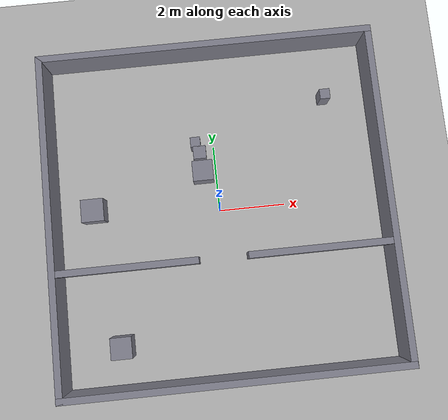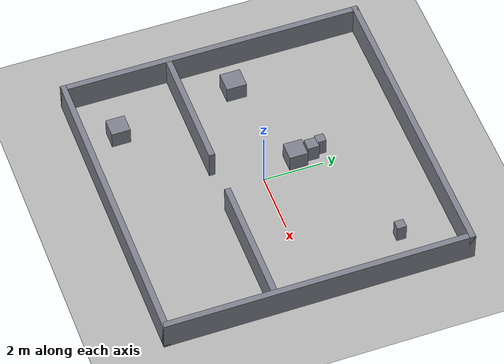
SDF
<?xml version="1.0"?>
<sdf version="1.10">
  <world name="scenario_1">
    <physics name="fast" type="ignored">
      <max_step_size>0.005</max_step_size>
      <real_time_factor>1.0</real_time_factor>
      <real_time_update_rate>200</real_time_update_rate>
    </physics>
    <plugin filename="gz-sim-physics-system" name="gz::sim::systems::Physics"/>
    <plugin filename="gz-sim-user-commands-system" name="gz::sim::systems::UserCommands"/>
    <plugin filename="gz-sim-scene-broadcaster-system" name="gz::sim::systems::SceneBroadcaster"/>
    <plugin filename="gz-sim-sensors-system" name="gz::sim::systems::Sensors">
      <render_engine>ogre2</render_engine>
    </plugin>
    <light type="directional" name="sun">
      <cast_shadows>false</cast_shadows>
      <pose>0 0 10 0 0 0</pose>
      <diffuse>0.9 0.9 0.9 1</diffuse>
      <direction>-0.5 0.2 -0.9</direction>
    </light>
    <model name="ground_plane">
      <static>true</static>
      <link name="link">
        <collision name="c"><geometry><plane><normal>0 0 1</normal><size>20 20</size></plane></geometry></collision>
        <visual name="v"><geometry><plane><normal>0 0 1</normal><size>20 20</size></plane></geometry>
          <material><ambient>0.7 0.7 0.7 1</ambient><diffuse>0.7 0.7 0.7 1</diffuse></material></visual>
      </link>
    </model>
    <model name="box_0">
      <static>true</static>
      <pose>0.0 5.0 0.5 0 0 0</pose>
      <link name="link">
        <collision name="c"><geometry><box><size>10.2 0.2 1.0</size></box></geometry></collision>
        <visual name="v"><geometry><box><size>10.2 0.2 1.0</size></box></geometry>
          <material><ambient>0.5 0.5 0.55 1</ambient><diffuse>0.5 0.5 0.55 1</diffuse></material></visual>
      </link>
    </model>
    <model name="box_1">
      <static>true</static>
      <pose>0.0 -5.0 0.5 0 0 0</pose>
      <link name="link">
        <collision name="c"><geometry><box><size>10.2 0.2 1.0</size></box></geometry></collision>
        <visual name="v"><geometry><box><size>10.2 0.2 1.0</size></box></geometry>
          <material><ambient>0.5 0.5 0.55 1</ambient><diffuse>0.5 0.5 0.55 1</diffuse></material></visual>
      </link>
    </model>
    <model name="box_2">
      <static>true</static>
      <pose>5.0 0.0 0.5 0 0 0</pose>
      <link name="link">
        <collision name="c"><geometry><box><size>0.2 10.2 1.0</size></box></geometry></collision>
        <visual name="v"><geometry><box><size>0.2 10.2 1.0</size></box></geometry>
          <material><ambient>0.5 0.5 0.55 1</ambient><diffuse>0.5 0.5 0.55 1</diffuse></material></visual>
      </link>
    </model>
    <model name="box_3">
      <static>true</static>
      <pose>-5.0 0.0 0.5 0 0 0</pose>
      <link name="link">
        <collision name="c"><geometry><box><size>0.2 10.2 1.0</size></box></geometry></collision>
        <visual name="v"><geometry><box><size>0.2 10.2 1.0</size></box></geometry>
          <material><ambient>0.5 0.5 0.55 1</ambient><diffuse>0.5 0.5 0.55 1</diffuse></material></visual>
      </link>
    </model>
    <model name="box_4">
      <static>true</static>
      <pose>-2.8257945986618846 -1.47 0.5 0 0 0</pose>
      <link name="link">
        <collision name="c"><geometry><box><size>4.148410802676231 0.2 1.0</size></box></geometry></collision>
        <visual name="v"><geometry><box><size>4.148410802676231 0.2 1.0</size></box></geometry>
          <material><ambient>0.5 0.5 0.55 1</ambient><diffuse>0.5 0.5 0.55 1</diffuse></material></visual>
      </link>
    </model>
    <model name="box_5">
      <static>true</static>
      <pose>2.794205401338116 -1.47 0.5 0 0 0</pose>
      <link name="link">
        <collision name="c"><geometry><box><size>4.211589197323769 0.2 1.0</size></box></geometry></collision>
        <visual name="v"><geometry><box><size>4.211589197323769 0.2 1.0</size></box></geometry>
          <material><ambient>0.5 0.5 0.55 1</ambient><diffuse>0.5 0.5 0.55 1</diffuse></material></visual>
      </link>
    </model>
    <model name="box_6">
      <static>true</static>
      <pose>-0.4 1.21 0.3 0 0 0</pose>
      <link name="link">
        <collision name="c"><geometry><box><size>0.62 0.62 0.6</size></box></geometry></collision>
        <visual name="v"><geometry><box><size>0.62 0.62 0.6</size></box></geometry>
          <material><ambient>0.5 0.5 0.55 1</ambient><diffuse>0.5 0.5 0.55 1</diffuse></material></visual>
      </link>
    </model>
    <model name="box_7">
      <static>true</static>
      <pose>-3.25 -3.77 0.3 0 0 0</pose>
      <link name="link">
        <collision name="c"><geometry><box><size>0.63 0.63 0.6</size></box></geometry></collision>
        <visual name="v"><geometry><box><size>0.63 0.63 0.6</size></box></geometry>
          <material><ambient>0.5 0.5 0.55 1</ambient><diffuse>0.5 0.5 0.55 1</diffuse></material></visual>
      </link>
    </model>
    <model name="box_8">
      <static>true</static>
      <pose>-0.54 2.1 0.3 0 0 0</pose>
      <link name="link">
        <collision name="c"><geometry><box><size>0.3 0.3 0.6</size></box></geometry></collision>
        <visual name="v"><geometry><box><size>0.3 0.3 0.6</size></box></geometry>
          <material><ambient>0.5 0.5 0.55 1</ambient><diffuse>0.5 0.5 0.55 1</diffuse></material></visual>
      </link>
    </model>
    <model name="box_9">
      <static>true</static>
      <pose>-0.44 1.77 0.3 0 0 0</pose>
      <link name="link">
        <collision name="c"><geometry><box><size>0.39 0.39 0.6</size></box></geometry></collision>
        <visual name="v"><geometry><box><size>0.39 0.39 0.6</size></box></geometry>
          <material><ambient>0.5 0.5 0.55 1</ambient><diffuse>0.5 0.5 0.55 1</diffuse></material></visual>
      </link>
    </model>
    <model name="box_10">
      <static>true</static>
      <pose>3.56 3.21 0.3 0 0 0</pose>
      <link name="link">
        <collision name="c"><geometry><box><size>0.31 0.31 0.6</size></box></geometry></collision>
        <visual name="v"><geometry><box><size>0.31 0.31 0.6</size></box></geometry>
          <material><ambient>0.5 0.5 0.55 1</ambient><diffuse>0.5 0.5 0.55 1</diffuse></material></visual>
      </link>
    </model>
    <model name="box_11">
      <static>true</static>
      <pose>-3.8 0.33 0.3 0 0 0</pose>
      <link name="link">
        <collision name="c"><geometry><box><size>0.68 0.68 0.6</size></box></geometry></collision>
        <visual name="v"><geometry><box><size>0.68 0.68 0.6</size></box></geometry>
          <material><ambient>0.5 0.5 0.55 1</ambient><diffuse>0.5 0.5 0.55 1</diffuse></material></visual>
      </link>
    </model>
  </world>
</sdf>
